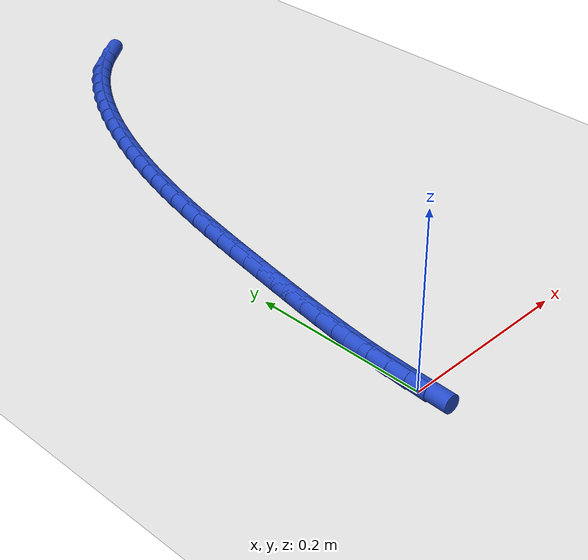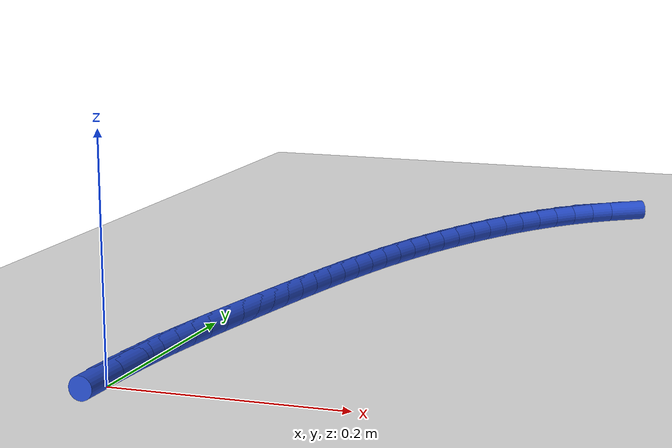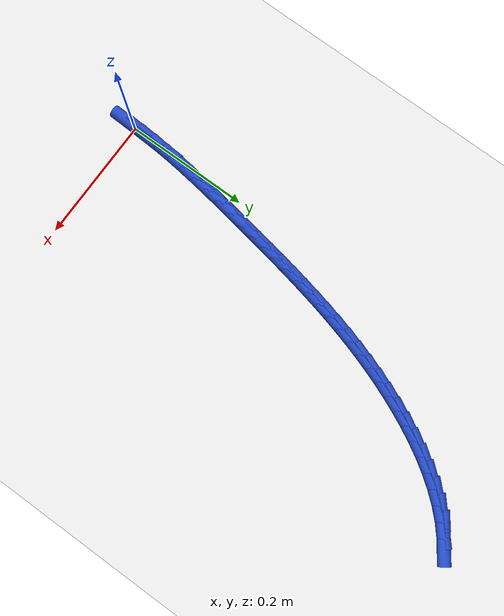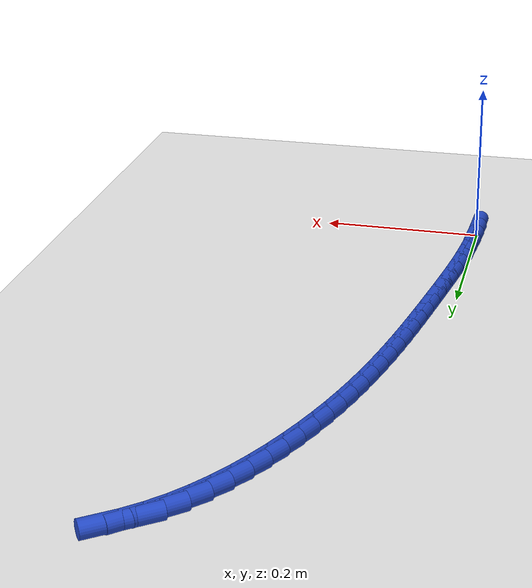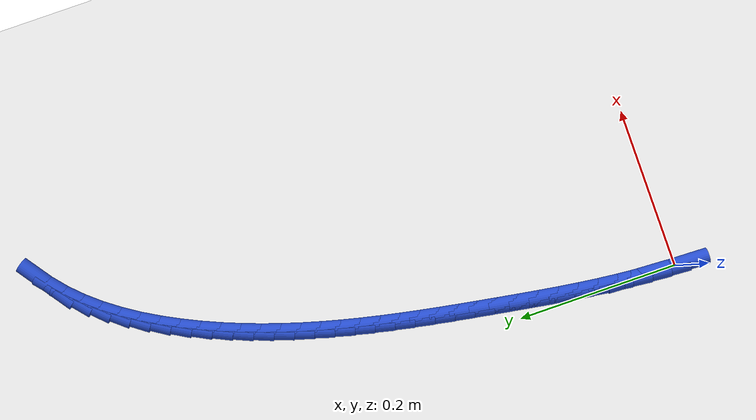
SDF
<sdf version="1.6">
 <world name="default">
  <model name="ground_plane">
   <static>1</static>
   <link name="link">
    <collision name="collision">
     <geometry><plane><normal>0 0 1</normal><size>100 100</size></plane></geometry>
     <surface><friction><ode><mu>100</mu><mu2>50</mu2></ode></friction></surface>
    </collision>
    <visual name="visual">
     <cast_shadows>0</cast_shadows>
     <geometry><plane><normal>0 0 1</normal><size>100 100</size></plane></geometry>
     <material>
      <script><uri>file://media/materials/scripts/gazebo.material</uri><name>Gazebo/WhiteGlow</name></script>
     </material>
    </visual>
   </link>
  </model>
  <model name="line">
   <link name="link_1">
    <pose>0.0007195218230819837 0.024337516535822827 0.01 0 1.57 1.51308982490859</pose>
    <collision name="collision">
     <geometry><cylinder><radius>0.01</radius><length>0.08</length></cylinder></geometry>
    </collision>
    <visual name="visual">
     <material>
      <script><name>Gazebo/Blue</name><uri>file://media/materials/scripts/gazebo.material</uri></script>
     </material>
     <geometry><cylinder><radius>0.01</radius><length>0.08</length></cylinder></geometry>
    </visual>
   </link>
   <link name="link_2">
    <pose>0.0021244689404564727 0.048656912357331134 0.01 0 1.57 1.488278428723793</pose>
    <collision name="collision">
     <geometry><cylinder><radius>0.01</radius><length>0.08</length></cylinder></geometry>
    </collision>
    <visual name="visual">
     <material>
      <script><name>Gazebo/Blue</name><uri>file://media/materials/scripts/gazebo.material</uri></script>
     </material>
     <geometry><cylinder><radius>0.01</radius><length>0.08</length></cylinder></geometry>
    </visual>
   </link>
   <link name="link_3">
    <pose>0.004134289332251086 0.07295778050648408 0.01 0 1.57 1.4668095110842758</pose>
    <collision name="collision">
     <geometry><cylinder><radius>0.01</radius><length>0.08</length></cylinder></geometry>
    </collision>
    <visual name="visual">
     <material>
      <script><name>Gazebo/Blue</name><uri>file://media/materials/scripts/gazebo.material</uri></script>
     </material>
     <geometry><cylinder><radius>0.01</radius><length>0.08</length></cylinder></geometry>
    </visual>
   </link>
   <link name="link_4">
    <pose>0.006668430978593442 0.09723971402524081 0.01 0 1.57 1.4486704126826055</pose>
    <collision name="collision">
     <geometry><cylinder><radius>0.01</radius><length>0.08</length></cylinder></geometry>
    </collision>
    <visual name="visual">
     <material>
      <script><name>Gazebo/Blue</name><uri>file://media/materials/scripts/gazebo.material</uri></script>
     </material>
     <geometry><cylinder><radius>0.01</radius><length>0.08</length></cylinder></geometry>
    </visual>
   </link>
   <link name="link_5">
    <pose>0.009646341859611156 0.12150230595556051 0.01 0 1.57 1.4338399486752662</pose>
    <collision name="collision">
     <geometry><cylinder><radius>0.01</radius><length>0.08</length></cylinder></geometry>
    </collision>
    <visual name="visual">
     <material>
      <script><name>Gazebo/Blue</name><uri>file://media/materials/scripts/gazebo.material</uri></script>
     </material>
     <geometry><cylinder><radius>0.01</radius><length>0.08</length></cylinder></geometry>
    </visual>
   </link>
   <link name="link_6">
    <pose>0.012987469955431845 0.1457451493394023 0.01 0 1.57 1.4222944027254192</pose>
    <collision name="collision">
     <geometry><cylinder><radius>0.01</radius><length>0.08</length></cylinder></geometry>
    </collision>
    <visual name="visual">
     <material>
      <script><name>Gazebo/Blue</name><uri>file://media/materials/scripts/gazebo.material</uri></script>
     </material>
     <geometry><cylinder><radius>0.01</radius><length>0.08</length></cylinder></geometry>
    </visual>
   </link>
   <link name="link_7">
    <pose>0.016611263246183124 0.1699678372187253 0.01 0 1.57 1.4140123082852827</pose>
    <collision name="collision">
     <geometry><cylinder><radius>0.01</radius><length>0.08</length></cylinder></geometry>
    </collision>
    <visual name="visual">
     <material>
      <script><name>Gazebo/Blue</name><uri>file://media/materials/scripts/gazebo.material</uri></script>
     </material>
     <geometry><cylinder><radius>0.01</radius><length>0.08</length></cylinder></geometry>
    </visual>
   </link>
   <link name="link_8">
    <pose>0.02043716971199261 0.1941699626354887 0.01 0 1.57 1.4089780779462597</pose>
    <collision name="collision">
     <geometry><cylinder><radius>0.01</radius><length>0.08</length></cylinder></geometry>
    </collision>
    <visual name="visual">
     <material>
      <script><name>Gazebo/Blue</name><uri>file://media/materials/scripts/gazebo.material</uri></script>
     </material>
     <geometry><cylinder><radius>0.01</radius><length>0.08</length></cylinder></geometry>
    </visual>
   </link>
   <link name="link_9">
    <pose>0.02438463733298791 0.21835111863165158 0.01 0 1.57 1.4066696369151357</pose>
    <collision name="collision">
     <geometry><cylinder><radius>0.01</radius><length>0.08</length></cylinder></geometry>
    </collision>
    <visual name="visual">
     <material>
      <script><name>Gazebo/Blue</name><uri>file://media/materials/scripts/gazebo.material</uri></script>
     </material>
     <geometry><cylinder><radius>0.01</radius><length>0.08</length></cylinder></geometry>
    </visual>
   </link>
   <link name="link_10">
    <pose>0.028385738809748325 0.24250995680989818 0.01 0 1.57 1.4035984461523492</pose>
    <collision name="collision">
     <geometry><cylinder><radius>0.01</radius><length>0.08</length></cylinder></geometry>
    </collision>
    <visual name="visual">
     <material>
      <script><name>Gazebo/Blue</name><uri>file://media/materials/scripts/gazebo.material</uri></script>
     </material>
     <geometry><cylinder><radius>0.01</radius><length>0.08</length></cylinder></geometry>
    </visual>
   </link>
   <link name="link_11">
    <pose>0.03245804061749975 0.26663875340820453 0.01 0 1.57 1.3983135419564523</pose>
    <collision name="collision">
     <geometry><cylinder><radius>0.01</radius><length>0.08</length></cylinder></geometry>
    </collision>
    <visual name="visual">
     <material>
      <script><name>Gazebo/Blue</name><uri>file://media/materials/scripts/gazebo.material</uri></script>
     </material>
     <geometry><cylinder><radius>0.01</radius><length>0.08</length></cylinder></geometry>
    </visual>
   </link>
   <link name="link_12">
    <pose>0.036654571461395585 0.2907271402070984 0.01 0 1.57 1.390804693583547</pose>
    <collision name="collision">
     <geometry><cylinder><radius>0.01</radius><length>0.08</length></cylinder></geometry>
    </collision>
    <visual name="visual">
     <material>
      <script><name>Gazebo/Blue</name><uri>file://media/materials/scripts/gazebo.material</uri></script>
     </material>
     <geometry><cylinder><radius>0.01</radius><length>0.08</length></cylinder></geometry>
    </visual>
   </link>
   <link name="link_13">
    <pose>0.04102847448072235 0.3147647404536284 0.01 0 1.57 1.3810668655635585</pose>
    <collision name="collision">
     <geometry><cylinder><radius>0.01</radius><length>0.08</length></cylinder></geometry>
    </collision>
    <visual name="visual">
     <material>
      <script><name>Gazebo/Blue</name><uri>file://media/materials/scripts/gazebo.material</uri></script>
     </material>
     <geometry><cylinder><radius>0.01</radius><length>0.08</length></cylinder></geometry>
    </visual>
   </link>
   <link name="link_14">
    <pose>0.045632892814766596 0.33874117739484316 0.01 0 1.57 1.3690966697908817</pose>
    <collision name="collision">
     <geometry><cylinder><radius>0.01</radius><length>0.08</length></cylinder></geometry>
    </collision>
    <visual name="visual">
     <material>
      <script><name>Gazebo/Blue</name><uri>file://media/materials/scripts/gazebo.material</uri></script>
     </material>
     <geometry><cylinder><radius>0.01</radius><length>0.08</length></cylinder></geometry>
    </visual>
   </link>
   <link name="link_15">
    <pose>0.05052096960281487 0.3626460742777914 0.01 0 1.57 1.354893824899044</pose>
    <collision name="collision">
     <geometry><cylinder><radius>0.01</radius><length>0.08</length></cylinder></geometry>
    </collision>
    <visual name="visual">
     <material>
      <script><name>Gazebo/Blue</name><uri>file://media/materials/scripts/gazebo.material</uri></script>
     </material>
     <geometry><cylinder><radius>0.01</radius><length>0.08</length></cylinder></geometry>
    </visual>
   </link>
   <link name="link_16">
    <pose>0.0557458479841537 0.3864690543495217 0.01 0 1.57 1.3384629493589146</pose>
    <collision name="collision">
     <geometry><cylinder><radius>0.01</radius><length>0.08</length></cylinder></geometry>
    </collision>
    <visual name="visual">
     <material>
      <script><name>Gazebo/Blue</name><uri>file://media/materials/scripts/gazebo.material</uri></script>
     </material>
     <geometry><cylinder><radius>0.01</radius><length>0.08</length></cylinder></geometry>
    </visual>
   </link>
   <link name="link_17">
    <pose>0.061360671098069614 0.41019974085708294 0.01 0 1.57 1.3198156685415325</pose>
    <collision name="collision">
     <geometry><cylinder><radius>0.01</radius><length>0.08</length></cylinder></geometry>
    </collision>
    <visual name="visual">
     <material>
      <script><name>Gazebo/Blue</name><uri>file://media/materials/scripts/gazebo.material</uri></script>
     </material>
     <geometry><cylinder><radius>0.01</radius><length>0.08</length></cylinder></geometry>
    </visual>
   </link>
   <link name="link_18">
    <pose>0.06741858208384917 0.4338277570475237 0.01 0 1.57 1.2989729960919787</pose>
    <collision name="collision">
     <geometry><cylinder><radius>0.01</radius><length>0.08</length></cylinder></geometry>
    </collision>
    <visual name="visual">
     <material>
      <script><name>Gazebo/Blue</name><uri>file://media/materials/scripts/gazebo.material</uri></script>
     </material>
     <geometry><cylinder><radius>0.01</radius><length>0.08</length></cylinder></geometry>
    </visual>
   </link>
   <link name="link_19">
    <pose>0.0739727240807789 0.45734272616789257 0.01 0 1.57 1.2759679231702117</pose>
    <collision name="collision">
     <geometry><cylinder><radius>0.01</radius><length>0.08</length></cylinder></geometry>
    </collision>
    <visual name="visual">
     <material>
      <script><name>Gazebo/Blue</name><uri>file://media/materials/scripts/gazebo.material</uri></script>
     </material>
     <geometry><cylinder><radius>0.01</radius><length>0.08</length></cylinder></geometry>
    </visual>
   </link>
   <link name="link_20">
    <pose>0.08107624022814534 0.4807342714652384 0.01 0 1.57 1.2508481159569462</pose>
    <collision name="collision">
     <geometry><cylinder><radius>0.01</radius><length>0.08</length></cylinder></geometry>
    </collision>
    <visual name="visual">
     <material>
      <script><name>Gazebo/Blue</name><uri>file://media/materials/scripts/gazebo.material</uri></script>
     </material>
     <geometry><cylinder><radius>0.01</radius><length>0.08</length></cylinder></geometry>
    </visual>
   </link>
   <link name="link_21">
    <pose>0.08878227366523503 0.5039920161866096 0.01 0 1.57 1.2236785842281588</pose>
    <collision name="collision">
     <geometry><cylinder><radius>0.01</radius><length>0.08</length></cylinder></geometry>
    </collision>
    <visual name="visual">
     <material>
      <script><name>Gazebo/Blue</name><uri>file://media/materials/scripts/gazebo.material</uri></script>
     </material>
     <geometry><cylinder><radius>0.01</radius><length>0.08</length></cylinder></geometry>
    </visual>
   </link>
   <link name="link_22">
    <pose>0.0971439675313345 0.5271055835790551 0.01 0 1.57 1.1945441455069041</pose>
    <collision name="collision">
     <geometry><cylinder><radius>0.01</radius><length>0.08</length></cylinder></geometry>
    </collision>
    <visual name="visual">
     <material>
      <script><name>Gazebo/Blue</name><uri>file://media/materials/scripts/gazebo.material</uri></script>
     </material>
     <geometry><cylinder><radius>0.01</radius><length>0.08</length></cylinder></geometry>
    </visual>
   </link>
   <link name="link_23">
    <pose>0.10621446496573032 0.5500645968896236 0.01 0 1.57 1.1635514760319494</pose>
    <collision name="collision">
     <geometry><cylinder><radius>0.01</radius><length>0.08</length></cylinder></geometry>
    </collision>
    <visual name="visual">
     <material>
      <script><name>Gazebo/Blue</name><uri>file://media/materials/scripts/gazebo.material</uri></script>
     </material>
     <geometry><cylinder><radius>0.01</radius><length>0.08</length></cylinder></geometry>
    </visual>
   </link>
   <link name="link_24">
    <pose>0.11604690910770901 0.5728586793653636 0.01 0 1.57 1.1304806581128175</pose>
    <collision name="collision">
     <geometry><cylinder><radius>0.01</radius><length>0.08</length></cylinder></geometry>
    </collision>
    <visual name="visual">
     <material>
      <script><name>Gazebo/Blue</name><uri>file://media/materials/scripts/gazebo.material</uri></script>
     </material>
     <geometry><cylinder><radius>0.01</radius><length>0.08</length></cylinder></geometry>
    </visual>
   </link>
   <link name="link_25">
    <pose>0.1266951397989091 0.5954584123743284 0.01 0 1.57 1.0928553787636517</pose>
    <collision name="collision">
     <geometry><cylinder><radius>0.01</radius><length>0.08</length></cylinder></geometry>
    </collision>
    <visual name="visual">
     <material>
      <script><name>Gazebo/Blue</name><uri>file://media/materials/scripts/gazebo.material</uri></script>
     </material>
     <geometry><cylinder><radius>0.01</radius><length>0.08</length></cylinder></geometry>
    </visual>
   </link>
   <link name="link_26">
    <pose>0.13821780072810833 0.6177030812215369 0.01 0 1.57 1.0491190272679338</pose>
    <collision name="collision">
     <geometry><cylinder><radius>0.01</radius><length>0.08</length></cylinder></geometry>
    </collision>
    <visual name="visual">
     <material>
      <script><name>Gazebo/Blue</name><uri>file://media/materials/scripts/gazebo.material</uri></script>
     </material>
     <geometry><cylinder><radius>0.01</radius><length>0.08</length></cylinder></geometry>
    </visual>
   </link>
   <link name="link_27">
    <pose>0.150675560646322 0.6393766233436146 0.01 0 1.57 0.9985542025627883</pose>
    <collision name="collision">
     <geometry><cylinder><radius>0.01</radius><length>0.08</length></cylinder></geometry>
    </collision>
    <visual name="visual">
     <material>
      <script><name>Gazebo/Blue</name><uri>file://media/materials/scripts/gazebo.material</uri></script>
     </material>
     <geometry><cylinder><radius>0.01</radius><length>0.08</length></cylinder></geometry>
    </visual>
   </link>
   <link name="link_28">
    <pose>0.16412909541280596 0.6602627818987412 0.01 0 1.57 0.94035812001997</pose>
    <collision name="collision">
     <geometry><cylinder><radius>0.01</radius><length>0.08</length></cylinder></geometry>
    </collision>
    <visual name="visual">
     <material>
      <script><name>Gazebo/Blue</name><uri>file://media/materials/scripts/gazebo.material</uri></script>
     </material>
     <geometry><cylinder><radius>0.01</radius><length>0.08</length></cylinder></geometry>
    </visual>
   </link>
   <link name="link_29">
    <pose>0.17863908088681588 0.6801453000450963 0.01 0 1.57 0.8736932939423195</pose>
    <collision name="collision">
     <geometry><cylinder><radius>0.01</radius><length>0.08</length></cylinder></geometry>
    </collision>
    <visual name="visual">
     <material>
      <script><name>Gazebo/Blue</name><uri>file://media/materials/scripts/gazebo.material</uri></script>
     </material>
     <geometry><cylinder><radius>0.01</radius><length>0.08</length></cylinder></geometry>
    </visual>
   </link>
   <link name="link_30">
    <pose>0.1942661929276074 0.6988079209408593 0.01 0 1.57 0.797784694931443</pose>
    <collision name="collision">
     <geometry><cylinder><radius>0.01</radius><length>0.08</length></cylinder></geometry>
    </collision>
    <visual name="visual">
     <material>
      <script><name>Gazebo/Blue</name><uri>file://media/materials/scripts/gazebo.material</uri></script>
     </material>
     <geometry><cylinder><radius>0.01</radius><length>0.08</length></cylinder></geometry>
    </visual>
   </link>
   <link name="link_31">
    <pose>0.21107110739443624 0.7160343877442097 0.01 0 1.57 0.7121474746974692</pose>
    <collision name="collision">
     <geometry><cylinder><radius>0.01</radius><length>0.08</length></cylinder></geometry>
    </collision>
    <visual name="visual">
     <material>
      <script><name>Gazebo/Blue</name><uri>file://media/materials/scripts/gazebo.material</uri></script>
     </material>
     <geometry><cylinder><radius>0.01</radius><length>0.08</length></cylinder></geometry>
    </visual>
   </link>
   <link name="link_32">
    <pose>0.22911373461113171 0.7316100390092171 0.01 0 1.57 0.6239749532948126</pose>
    <collision name="collision">
     <geometry><cylinder><radius>0.01</radius><length>0.08</length></cylinder></geometry>
    </collision>
    <visual name="visual">
     <material>
      <script><name>Gazebo/Blue</name><uri>file://media/materials/scripts/gazebo.material</uri></script>
     </material>
     <geometry><cylinder><radius>0.01</radius><length>0.08</length></cylinder></geometry>
    </visual>
   </link>
   <link name="link_280">
    <pose>2.6020852139652106e-18 5.551115123125783e-17 0.01 0 1.57 1.5404774592681996</pose>
    <collision name="collision">
     <geometry><cylinder><radius>0.01</radius><length>0.08</length></cylinder></geometry>
    </collision>
    <visual name="visual">
     <material>
      <script><name>Gazebo/Blue</name><uri>file://media/materials/scripts/gazebo.material</uri></script>
     </material>
     <geometry><cylinder><radius>0.01</radius><length>0.08</length></cylinder></geometry>
    </visual>
   </link>
   <link name="link_281">
    <pose>0.000738053550517156 0.024335585361221202 0.01 0 1.57 1.507740192465809</pose>
    <collision name="collision">
     <geometry><cylinder><radius>0.01</radius><length>0.08</length></cylinder></geometry>
    </collision>
    <visual name="visual">
     <material>
      <script><name>Gazebo/Blue</name><uri>file://media/materials/scripts/gazebo.material</uri></script>
     </material>
     <geometry><cylinder><radius>0.01</radius><length>0.08</length></cylinder></geometry>
    </visual>
   </link>
   <link name="link_282">
    <pose>0.0022727227599378935 0.048641462960518564 0.01 0 1.57 1.5241063034817213</pose>
    <collision name="collision">
     <geometry><cylinder><radius>0.01</radius><length>0.08</length></cylinder></geometry>
    </collision>
    <visual name="visual">
     <material>
      <script><name>Gazebo/Blue</name><uri>file://media/materials/scripts/gazebo.material</uri></script>
     </material>
     <geometry><cylinder><radius>0.01</radius><length>0.08</length></cylinder></geometry>
    </visual>
   </link>
  </model>
 </world>
</sdf>
